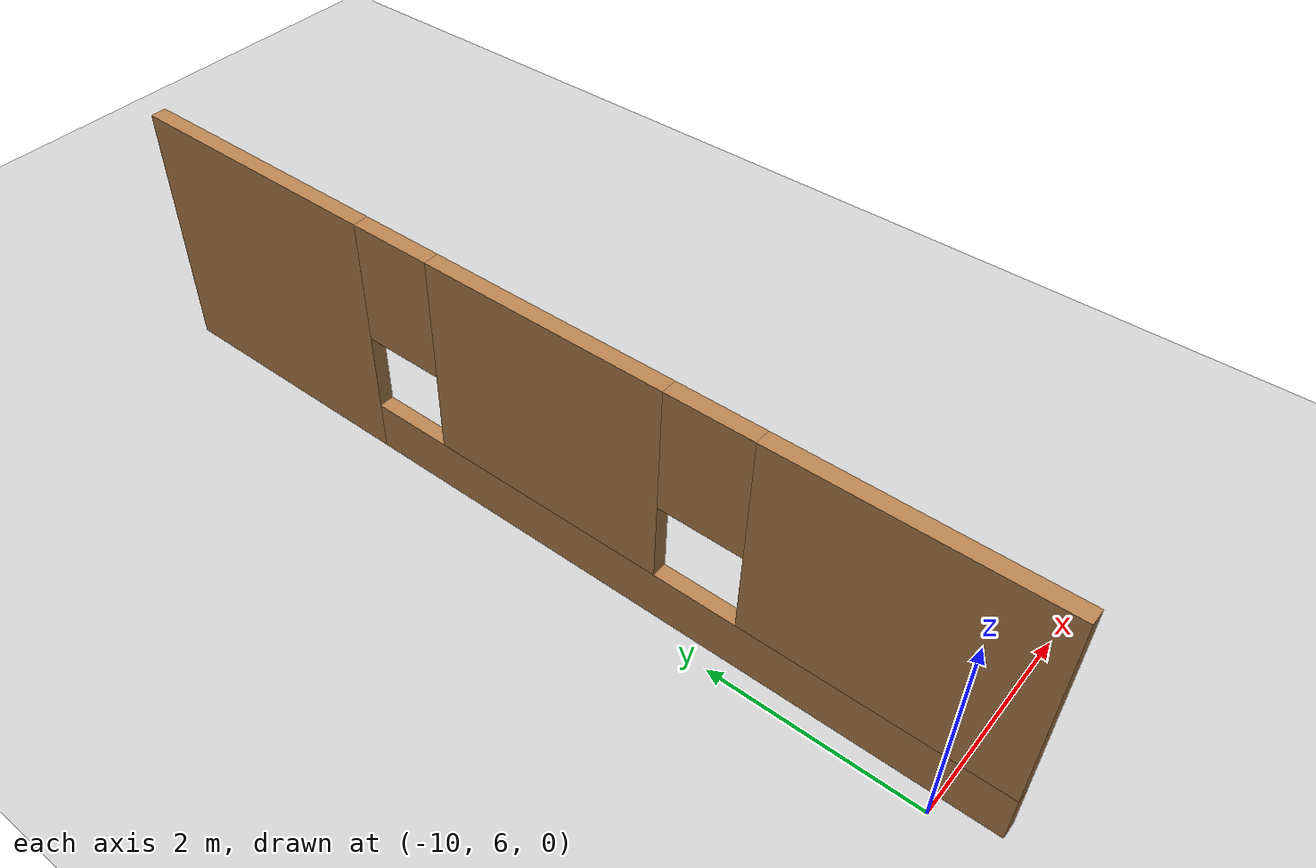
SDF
<sdf version="1.6">
 <world name="default">
  <model name="ground_plane">
   <static>1</static>
   <link name="link">
    <collision name="collision">
     <geometry><plane><normal>0 0 1</normal><size>100 100</size></plane></geometry>
     <surface>
      <contact><collide_bitmask>65535</collide_bitmask></contact>
      <friction><ode><mu>100</mu><mu2>50</mu2></ode></friction>
     </surface>
    </collision>
    <visual name="visual">
     <cast_shadows>0</cast_shadows>
     <geometry><plane><normal>0 0 1</normal><size>100 100</size></plane></geometry>
     <material>
      <script><uri>file://media/materials/scripts/gazebo.material</uri><name>Gazebo/Grey</name></script>
     </material>
    </visual>
   </link>
  </model>
  <model name="bigHouse">
   <pose>-26.8831 -3.8622 0 0 -0 0</pose>
   <link name="Wall_17">
    <pose>17.1284 13.8352 0 0 0 -1.5708</pose>
    <visual name="Wall_17_Visual_0">
     <pose>-3.18124 0 1.25 0 -0 0</pose>
     <geometry><box><size>2.63752 0.15 2.5</size></box></geometry>
     <material>
      <script><uri>file://media/materials/scripts/gazebo.material</uri><name>Gazebo/Wood</name></script>
      <ambient>1 1 1 1</ambient>
     </material>
     <meta><layer>0</layer></meta>
    </visual>
    <collision name="Wall_17_Collision_0">
     <geometry><box><size>2.63752 0.15 2.5</size></box></geometry>
     <pose>-3.18124 0 1.25 0 -0 0</pose>
    </collision>
    <visual name="Wall_17_Visual_1">
     <pose>1.31876 0 0.25 0 -0 0</pose>
     <geometry><box><size>6.36248 0.15 0.5</size></box></geometry>
     <material>
      <script><uri>file://media/materials/scripts/gazebo.material</uri><name>Gazebo/Wood</name></script>
      <ambient>1 1 1 1</ambient>
     </material>
     <meta><layer>0</layer></meta>
    </visual>
    <collision name="Wall_17_Collision_1">
     <geometry><box><size>6.36248 0.15 0.5</size></box></geometry>
     <pose>1.31876 0 0.25 0 -0 0</pose>
    </collision>
    <visual name="Wall_17_Visual_2">
     <pose>0.110682 0 1.5 0 -0 0</pose>
     <geometry><box><size>2.34633 0.15 2</size></box></geometry>
     <material>
      <script><uri>file://media/materials/scripts/gazebo.material</uri><name>Gazebo/Wood</name></script>
      <ambient>1 1 1 1</ambient>
     </material>
     <meta><layer>0</layer></meta>
    </visual>
    <collision name="Wall_17_Collision_2">
     <geometry><box><size>2.34633 0.15 2</size></box></geometry>
     <pose>0.110682 0 1.5 0 -0 0</pose>
    </collision>
    <visual name="Wall_17_Visual_3">
     <pose>3.29192 0 1.5 0 -0 0</pose>
     <geometry><box><size>2.41615 0.15 2</size></box></geometry>
     <material>
      <script><uri>file://media/materials/scripts/gazebo.material</uri><name>Gazebo/Wood</name></script>
      <ambient>1 1 1 1</ambient>
     </material>
     <meta><layer>0</layer></meta>
    </visual>
    <collision name="Wall_17_Collision_3">
     <geometry><box><size>2.41615 0.15 2</size></box></geometry>
     <pose>3.29192 0 1.5 0 -0 0</pose>
    </collision>
    <visual name="Wall_17_Visual_4">
     <pose>-1.46248 0 1.9 0 -0 0</pose>
     <geometry><box><size>0.8 0.15 1.2</size></box></geometry>
     <material>
      <script><uri>file://media/materials/scripts/gazebo.material</uri><name>Gazebo/Wood</name></script>
      <ambient>1 1 1 1</ambient>
     </material>
     <meta><layer>0</layer></meta>
    </visual>
    <collision name="Wall_17_Collision_4">
     <geometry><box><size>0.8 0.15 1.2</size></box></geometry>
     <pose>-1.46248 0 1.9 0 -0 0</pose>
    </collision>
    <visual name="Wall_17_Visual_5">
     <pose>1.68385 0 1.9 0 -0 0</pose>
     <geometry><box><size>0.8 0.15 1.2</size></box></geometry>
     <material>
      <script><uri>file://media/materials/scripts/gazebo.material</uri><name>Gazebo/Wood</name></script>
      <ambient>1 1 1 1</ambient>
     </material>
     <meta><layer>0</layer></meta>
    </visual>
    <collision name="Wall_17_Collision_5">
     <geometry><box><size>0.8 0.15 1.2</size></box></geometry>
     <pose>1.68385 0 1.9 0 -0 0</pose>
    </collision>
   </link>
   <static>1</static>
  </model>
 </world>
</sdf>
